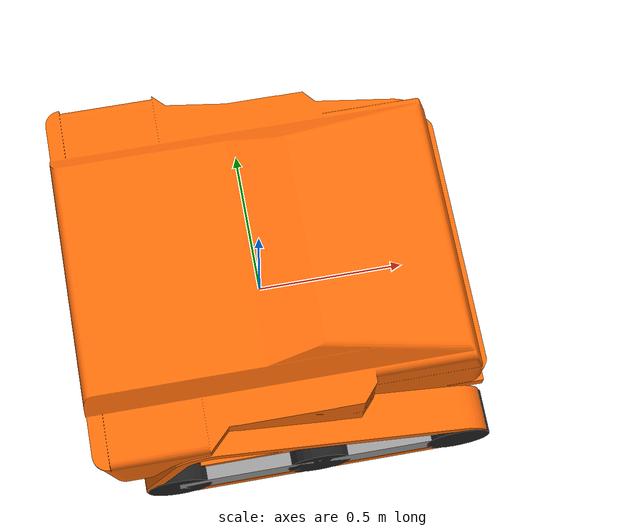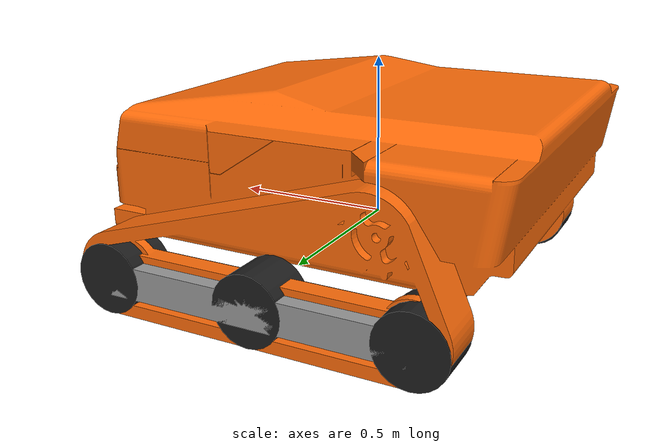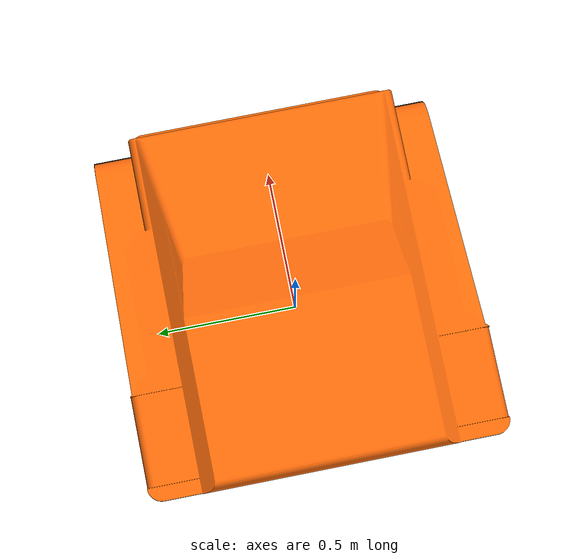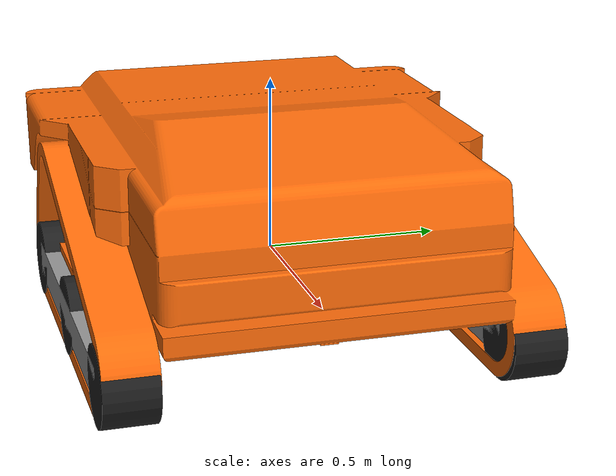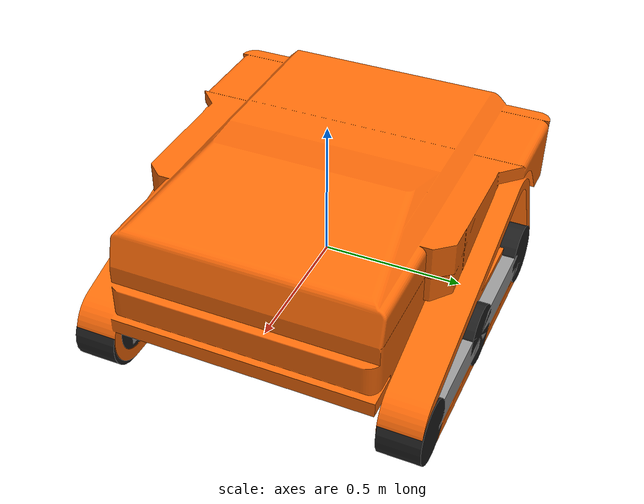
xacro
<?xml version="1.0"?>

<robot xmlns:xacro="http://ros.org/wiki/xacro" name="mowbot">

  <xacro:arg name="prefix" default="" />
  <xacro:arg name="gazebo_controllers" default="$(find mowbot_gazebo)/config/gazebo_control.yaml" />

  <xacro:include filename="$(find mowbot_description)/urdf/mowbot_macro.urdf.xacro" />

  <!-- Load husky description -->
  <xacro:mowbot prefix="$(arg prefix)" />

  <xacro:if value="$(arg is_sim)">
    <gazebo>
      <plugin name="$(arg prefix)gazebo_ros2_control" filename="libgazebo_ros2_control.so">
        <parameters>$(arg gazebo_controllers)</parameters>
      </plugin>

      <!-- other sim -->

    </gazebo>

  </xacro:if>

</robot>

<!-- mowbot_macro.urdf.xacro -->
<robot xmlns:xacro="http://ros.org/wiki/xacro">

  <xacro:arg name="robot_namespace" default="/" />
  <xacro:arg name="is_sim" default="false" />

  <!-- Included URDF/XACRO Files -->
  <xacro:include filename="$(find mowbot_description)/urdf/decorations.urdf.xacro" />
  <xacro:include filename="$(find mowbot_description)/urdf/track.urdf.xacro" />

  <xacro:property name="M_PI" value="3.14159"/>

  <xacro:macro name="mowbot" params="prefix">

    <!-- Robot Size -->
    <xacro:property name="robot_x_size" value="1.31600000" />
    <xacro:property name="robot_y_size" value="1.24000000" />
    <xacro:property name="robot_z_size" value="0.66160000" />

    <!-- Track Properties -->
    <xacro:property name="track_x_size" value="0.968" />
    <xacro:property name="track_y_size" value="0.15" />
    <xacro:property name="track_z_size" value="0.1" />
    <xacro:property name="track_wheel_radius" value="0.11" />
    <xacro:property name="track_wheel_length" value="0.15" />

    <!-- Track Mounting Position -->
    <xacro:property name="track_mount_x_size" value="0.1" />
    <xacro:property name="track_mount_y_size" value="${robot_y_size - track_wheel_length}" />
    <xacro:property name="track_mount_vertical_offset" value="0.11" />

    <!-- Body Box Size -->
    <xacro:property name="body_box_x_size" value="${robot_x_size}" />
    <xacro:property name="body_box_y_size" value="${robot_y_size - 2*track_wheel_length}" />
    <xacro:property name="body_box_z_size" value="${robot_z_size - 2*track_wheel_radius}" />

    <!-- Base link is the center of the robot's bottom plate -->
    <link name="${prefix}base_link">
    </link>

    <link name="${prefix}body_box">
      <collision>
        <geometry>
          <box size="${body_box_x_size} ${body_box_y_size} ${body_box_z_size}"/>
        </geometry>
      </collision>
    </link>

    <joint name="${prefix}body_box_joint" type="fixed">
      <origin xyz="0 0 ${0.5*(robot_z_size-2*track_wheel_radius)}" rpy="0 0 0" />
      <parent link="${prefix}base_link" />
      <child link="${prefix}body_box" />
    </joint>

    <link name="${prefix}base_visual">
      <visual>
        <geometry>
          <mesh filename="package://mowbot_description/meshes/mowbot_v02.stl" scale="1.0 1.0 1.0"/>
        </geometry>
        <material name="orange"/>
      </visual>
    </link>

    <joint name="${prefix}base_visual_joint" type="fixed">
      <origin xyz="0 0 0" rpy="0 0 0" />
      <parent link="${prefix}base_link" />
      <child link="${prefix}base_visual" />
    </joint>

    <link name="${prefix}base_footprint">
    </link>

    <joint name="${prefix}base_footprint_joint" type="fixed">
      <origin xyz="0.0 0.0 -0.22" rpy="0.0 0.0 0.0"/>
      <parent link="${prefix}base_link" />
      <child link="${prefix}base_footprint" />
    </joint>

    <!-- Inertial link stores the robot's inertial information -->
    <!-- TODO -->
    <link name="${prefix}inertial_link">
      <inertial>
        <mass value="310" />
        <origin xyz="0 0 0" />
        <inertia ixx="0.6022" ixy="-0.02364" ixz="-0.1197"
                 iyy="1.7386" iyz="-0.001544"
                 izz="2.0296" />
      </inertial>
    </link>

    <joint name="${prefix}inertial_joint" type="fixed">
      <origin xyz="0 0 0" rpy="0 0 0" />
      <parent link="${prefix}base_link" />
      <child link="${prefix}inertial_link" />
    </joint>

    <!-- Track macros -->
    <xacro:mowbot_track track_prefix="${prefix}left">
      <origin xyz="${track_mount_x_size} ${0.5*track_mount_y_size} ${-track_mount_vertical_offset}" rpy="0 0 0"/>
    </xacro:mowbot_track>

    <xacro:mowbot_track track_prefix="${prefix}right">
      <origin xyz="${track_mount_x_size} ${-0.5*track_mount_y_size} ${-track_mount_vertical_offset}" rpy="0 0 0"/>
    </xacro:mowbot_track>

    <!-- Include ROS2 Control -->
    <xacro:include filename="$(find mowbot_description)/urdf/ros2_control.urdf.xacro" />

  </xacro:macro>

</robot>

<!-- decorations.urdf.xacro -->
<robot name="mowbot_decorations" xmlns:xacro="http://ros.org/wiki/xacro">

  <material name="orange"><color rgba="1.0 0.4235 0.0392 1.0"/></material>

</robot>

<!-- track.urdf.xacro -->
<robot xmlns:xacro="http://www.ros.org/wiki/xacro" name="mowbot_track">

  <!-- Macro for a single track -->
  <xacro:macro name="mowbot_track" params="track_prefix *joint_pose">

    <link name="${track_prefix}_track">
      <visual>
        <geometry>
          <box size="${track_x_size} ${track_y_size} ${track_z_size}"/>
        </geometry>
        <material name="grey"/>
      </visual>
      <inertial>
        <mass value="0.5" />
        <origin xyz="0 0 0" />
        <inertia  ixx="0.001" ixy="0" ixz="0"
                  iyy="0.001" iyz="0"
                  izz="0.001" />
      </inertial>
    </link>

    <joint name="${track_prefix}_track_joint" type="fixed">
      <parent link="base_link"/>
      <child link="${track_prefix}_track"/>
      <xacro:insert_block name="joint_pose"/>
      <axis xyz="0 1 0"/>
    </joint>

    <!-- Track Wheel -->
    <xacro:track_wheel
      wheel_prefix="${track_prefix}_track_front"
      parent_link="${track_prefix}_track"
      radius="${track_wheel_radius}"
      length="${track_wheel_length}"
      origin_xyz="${-0.5*track_x_size} 0 0"
    />

    <xacro:track_wheel
      wheel_prefix="${track_prefix}_track_rear"
      parent_link="${track_prefix}_track"
      radius="${track_wheel_radius}"
      length="${track_wheel_length}"
      origin_xyz="${0.5*track_x_size} 0 0"
    />

    <xacro:track_wheel
      wheel_prefix="${track_prefix}_track_middle"
      parent_link="${track_prefix}_track"
      radius="${track_wheel_radius}"
      length="${track_wheel_length}"
      origin_xyz="0 0 0"
    />

  </xacro:macro>

  <!-- Macro for track wheel -->
  <xacro:macro name="track_wheel" params="wheel_prefix parent_link radius length origin_xyz">
    <link name="${wheel_prefix}_wheel">
      <visual>
        <origin xyz="0 0 0" rpy="${M_PI/2} 0 0"/>
        <geometry>
          <cylinder radius="${radius}" length="${length}"/>
        </geometry>
        <material name="black"/>
      </visual>
      <collision>
        <origin xyz="0 0 0" rpy="${M_PI/2} 0 0"/>
        <geometry>
          <cylinder radius="${radius}" length="${length}"/>
        </geometry>
      </collision>
      <inertial>
        <mass value="2.637" />
        <origin xyz="0 0 0" />
        <inertia  ixx="0.02467" ixy="0" ixz="0"
                  iyy="0.04411" iyz="0"
                  izz="0.02467" />
      </inertial>
    </link>

    <joint name="${wheel_prefix}_wheel_joint" type="continuous">
      <parent link="${parent_link}"/>
      <child link="${wheel_prefix}_wheel"/>
      <origin xyz="${origin_xyz}"/>
      <axis xyz="0 1 0"/>
    </joint>

    <!-- Gazebo properties for track wheel -->
    <gazebo reference="${wheel_prefix}_wheel">
      <mu1 value="1.0"/>
      <mu2 value="0.5"/>
      <kp value="10000000.0" />
      <kd value="1.0" />
      <fdir1 value="1 0 0"/>
    </gazebo>

  </xacro:macro>

</robot>
